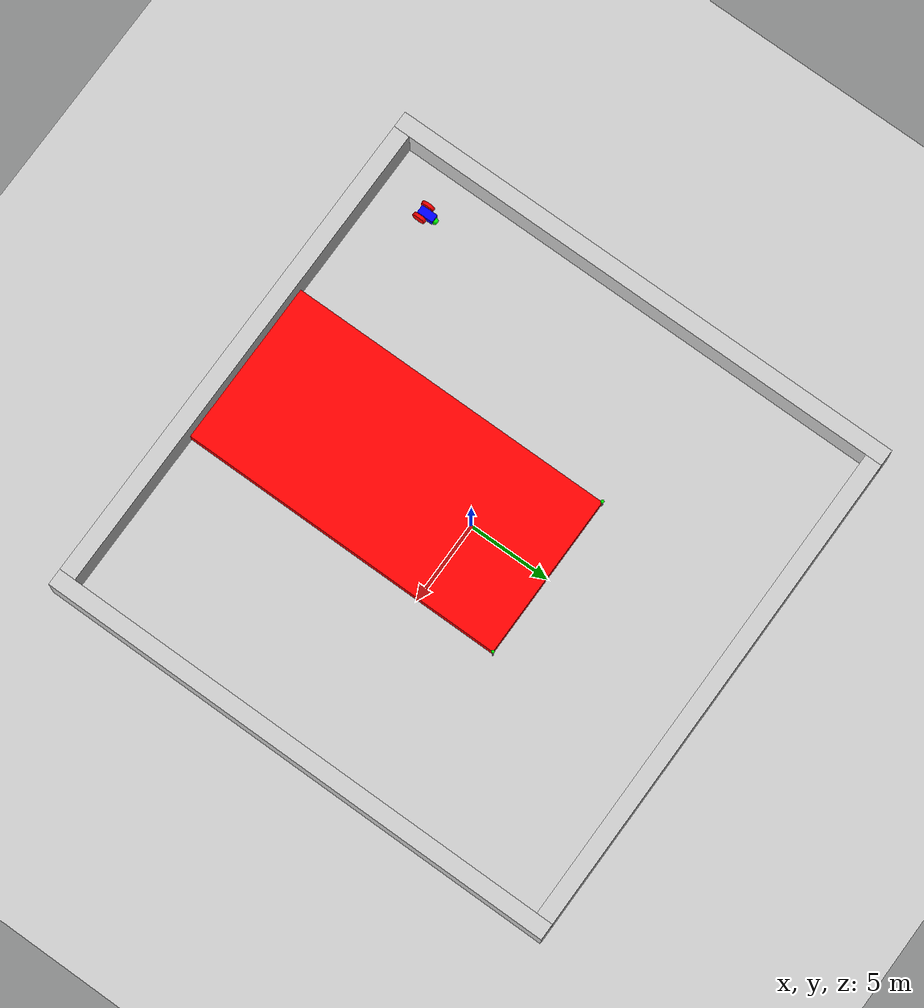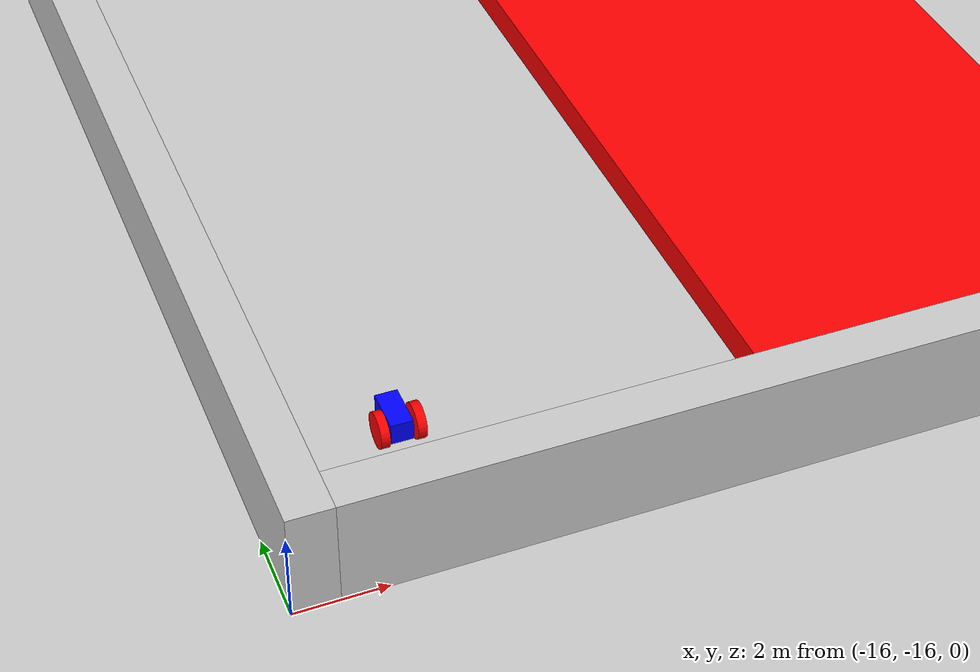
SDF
<?xml version="1.10" ?>
<sdf version="1.6">
  <world name="default">
    <plugin
      filename="gz-sim-physics-system"
      name="gz::sim::systems::Physics">
    </plugin>
    <plugin
      filename="gz-sim-scene-broadcaster-system"
      name="gz::sim::systems::SceneBroadcaster">
    </plugin>
    <plugin
      filename="gz-sim-sensors-system"
      name="gz::sim::systems::Sensors">
      <render_engine>ogre2</render_engine>
    </plugin>
    <plugin
      filename="gz-sim-user-commands-system"
      name="gz::sim::systems::UserCommands">
    </plugin>

    <gui fullscreen="0">
      <!-- 3D scene -->
      <plugin filename="MinimalScene" name="3D View">
        <engine>ogre2</engine>
        <scene>scene</scene>
        <ambient_light>0.4 0.4 0.4</ambient_light>
        <background_color>0.8 0.8 0.8</background_color>
        <camera_pose>-6 0 6 0 0.5 0</camera_pose>
      </plugin>

      <!-- Plugins that add functionality to the scene -->
      <plugin filename="EntityContextMenuPlugin" name="Entity context menu">
        <gz-gui>
          <property key="state" type="string">floating</property>
          <property key="width" type="double">5</property>
          <property key="height" type="double">5</property>
          <property key="showTitleBar" type="bool">false</property>
        </gz-gui>
      </plugin>
      <plugin filename="GzSceneManager" name="Scene Manager">
        <gz-gui>
          <property key="resizable" type="bool">false</property>
          <property key="width" type="double">5</property>
          <property key="height" type="double">5</property>
          <property key="state" type="string">floating</property>
          <property key="showTitleBar" type="bool">false</property>
        </gz-gui>
      </plugin>
      <plugin filename="InteractiveViewControl" name="Interactive view control">
        <gz-gui>
          <property key="resizable" type="bool">false</property>
          <property key="width" type="double">5</property>
          <property key="height" type="double">5</property>
          <property key="state" type="string">floating</property>
          <property key="showTitleBar" type="bool">false</property>
        </gz-gui>
      </plugin>
      <plugin filename="CameraTracking" name="Camera Tracking">
        <gz-gui>
          <property key="resizable" type="bool">false</property>
          <property key="width" type="double">5</property>
          <property key="height" type="double">5</property>
          <property key="state" type="string">floating</property>
          <property key="showTitleBar" type="bool">false</property>
        </gz-gui>
      </plugin>
      <!-- World control -->
      <plugin filename="WorldControl" name="World control">
        <gz-gui>
          <title>World control</title>
          <property type="bool" key="showTitleBar">false</property>
          <property type="bool" key="resizable">false</property>
          <property type="double" key="height">72</property>
          <property type="double" key="z">1</property>

          <property type="string" key="state">floating</property>
          <anchors target="3D View">
            <line own="left" target="left"/>
            <line own="bottom" target="bottom"/>
          </anchors>
        </gz-gui>

        <play_pause>true</play_pause>
        <step>true</step>
        <start_paused>true</start_paused>
        <use_event>true</use_event>

      </plugin>

      <!-- World statistics -->
      <plugin filename="WorldStats" name="World stats">
        <gz-gui>
          <title>World stats</title>
          <property type="bool" key="showTitleBar">false</property>
          <property type="bool" key="resizable">false</property>
          <property type="double" key="height">110</property>
          <property type="double" key="width">290</property>
          <property type="double" key="z">1</property>

          <property type="string" key="state">floating</property>
          <anchors target="3D View">
            <line own="right" target="right"/>
            <line own="bottom" target="bottom"/>
          </anchors>
        </gz-gui>

        <sim_time>true</sim_time>
        <real_time>true</real_time>
        <real_time_factor>true</real_time_factor>
        <iterations>true</iterations>
      </plugin>

      <plugin filename="ImageDisplay" name="Image Display">
        <gz-gui>
          <property key="state" type="string">docked</property>
        </gz-gui>
        <topic>ptzCam1/camera_x1</topic>
      </plugin>

      <plugin filename="ImageDisplay" name="Image Display">
        <gz-gui>
          <property key="state" type="string">docked</property>
        </gz-gui>
        <topic>ptzCam2/camera_x1</topic>
      </plugin>

      <!-- Inspector -->

      <!-- Entity tree -->
    </gui>

    <model name="ground_plane">
      <static>true</static>
      <link name="link">
        <collision name="collision">
          <geometry>
            <plane>
              <normal>0 0 1</normal>
              <size>1000 1000</size>
            </plane>
          </geometry>
        </collision>
        <visual name="visual">
          <geometry>
            <plane>
              <normal>0 0 1</normal>
              <size>30 30</size>
            </plane>
          </geometry>
          <material>
            <ambient>0.8 0.8 0.8 1</ambient>
            <diffuse>0.8 0.8 0.8 1</diffuse>
            <specular>0.8 0.8 0.8 1</specular>
          </material>
        </visual>
      </link>
    </model>

    <model name="building">
      <pose>0 -5 0.5 0 0 0</pose>
      <link name="building">
        <inertial>
          <inertia>
            <ixx>1</ixx>
            <ixy>0</ixy>
            <ixz>0</ixz>
            <iyy>1</iyy>
            <iyz>0</iyz>
            <izz>1</izz>
          </inertia>
          <mass>1.0</mass>
        </inertial>
        <collision name="building_collision">
          <geometry>
            <box>
              <size>5 15 0.75</size>
            </box>
          </geometry>
        </collision>

        <visual name="building_visual">
          <geometry>
            <box>
              <size>10 20 0.75</size>
            </box>
          </geometry>
          <material>
            <ambient>1 0 0 1</ambient>
            <diffuse>1 0 0 1</diffuse>
            <specular>1 0 0 1</specular>
          </material>
        </visual>
      </link>
    </model>

    <model name="wall1">
      <pose>-15.5 0 1 0 0 0</pose>
      <link name="building">
        <inertial>
          <inertia>
            <ixx>1</ixx>
            <ixy>0</ixy>
            <ixz>0</ixz>
            <iyy>1</iyy>
            <iyz>0</iyz>
            <izz>1</izz>
          </inertia>
          <mass>1000.0</mass>
        </inertial>
        <collision name="building_collision">
          <geometry>
            <box>
              <size>1 32 3</size>
            </box>
          </geometry>
        </collision>

        <visual name="building_visual">
          <geometry>
            <box>
              <size>1 32 3</size>
            </box>
          </geometry>
          <material>
            <ambient>0.8 0.8 0.8 1</ambient>
            <diffuse>0.8 0.8 0.8 1</diffuse>
            <specular>0.8 0.8 0.8 1</specular>
          </material>
        </visual>
      </link>
    </model>

    <model name="wall2">
      <pose>15.5 0 1 0 0 0</pose>
      <link name="building">
        <inertial>
          <inertia>
            <ixx>1</ixx>
            <ixy>0</ixy>
            <ixz>0</ixz>
            <iyy>1</iyy>
            <iyz>0</iyz>
            <izz>1</izz>
          </inertia>
          <mass>1000.0</mass>
        </inertial>
        <collision name="building_collision">
          <geometry>
            <box>
              <size>1 32 3</size>
            </box>
          </geometry>
        </collision>

        <visual name="building_visual">
          <geometry>
            <box>
              <size>1 32 3</size>
            </box>
          </geometry>
          <material>
            <ambient>0.8 0.8 0.8 1</ambient>
            <diffuse>0.8 0.8 0.8 1</diffuse>
            <specular>0.8 0.8 0.8 1</specular>
          </material>
        </visual>
      </link>
    </model>

    <model name="wall3">
      <pose>0 15.5 1 0 0 0</pose>
      <link name="building">
        <inertial>
          <inertia>
            <ixx>1</ixx>
            <ixy>0</ixy>
            <ixz>0</ixz>
            <iyy>1</iyy>
            <iyz>0</iyz>
            <izz>1</izz>
          </inertia>
          <mass>1000.0</mass>
        </inertial>
        <collision name="building_collision">
          <geometry>
            <box>
              <size>30 1 3</size>
            </box>
          </geometry>
        </collision>

        <visual name="building_visual">
          <geometry>
            <box>
              <size>30 1 3</size>
            </box>
          </geometry>
          <material>
            <ambient>0.8 0.8 0.8 1</ambient>
            <diffuse>0.8 0.8 0.8 1</diffuse>
            <specular>0.8 0.8 0.8 1</specular>
          </material>
        </visual>
      </link>
    </model>

    <model name="wall4">
      <pose>0 -15.5 1 0 0 0</pose>
      <link name="building">
        <inertial>
          <inertia>
            <ixx>1</ixx>
            <ixy>0</ixy>
            <ixz>0</ixz>
            <iyy>1</iyy>
            <iyz>0</iyz>
            <izz>1</izz>
          </inertia>
          <mass>1000.0</mass>
        </inertial>
        <collision name="building_collision">
          <geometry>
            <box>
              <size>30 1 3</size>
            </box>
          </geometry>
        </collision>

        <visual name="building_visual">
          <geometry>
            <box>
              <size>30 1 3</size>
            </box>
          </geometry>
          <material>
            <ambient>0.8 0.8 0.8 1</ambient>
            <diffuse>0.8 0.8 0.8 1</diffuse>
            <specular>0.8 0.8 0.8 1</specular>
          </material>
        </visual>
      </link>
    </model>

    <light type="directional" name="sun">
      <cast_shadows>true</cast_shadows>
      <pose>0 0 10 0 0 0</pose>
      <diffuse>1 1 1 1</diffuse>
      <specular>0.5 0.5 0.5 1</specular>
      <attenuation>
        <range>1000</range>
        <constant>0.9</constant>
        <linear>0.01</linear>
        <quadratic>0.001</quadratic>
      </attenuation>
      <direction>-0.5 0.1 -0.9</direction>
    </light>

    <model name="ptzCam1">
      <pose>-5 5 0 0 1.57 0</pose>
      <link name="base_link">
        <pose>0.0 0.0 0.0 0 0 0</pose>
        <inertial>
          <inertia>
            <ixx>2.501</ixx>
            <ixy>0</ixy>
            <ixz>0</ixz>
            <iyy>2.501</iyy>
            <iyz>0</iyz>
            <izz>5</izz>
          </inertia>
          <mass>120.0</mass>
        </inertial>
        <visual name="base_visual">
          <pose>-.5 0.0 0.0 0 -1.57 0</pose>
          <geometry>
            <cylinder>
              <radius>0.05</radius>
              <length>1</length>
            </cylinder>
          </geometry>
        </visual>
        <collision name="base_collision">
          <pose>0.0 0.0 0.0 0 0 0</pose>
          <geometry>
            <cylinder>
              <radius>0.05</radius>
              <length>0.1</length>
            </cylinder>
          </geometry>
        </collision>
      </link>
      <link name="camera">
        <pose>-1.01 0.0 0.0 0 -1.57 0</pose>
        <inertial>
          <inertia>
            <ixx>0.032</ixx>
            <ixy>0</ixy>
            <ixz>0</ixz>
            <iyy>0.032</iyy>
            <iyz>0</iyz>
            <izz>0.00012</izz>
          </inertia>
          <mass>0.6</mass>
        </inertial>
        <visual name="visual">
          <geometry>
            <sphere>
              <radius>0.1</radius>
            </sphere>
          </geometry>
          <material>
            <ambient>0 1 0 1</ambient>
            <diffuse>0 1 0 1</diffuse>
            <specular>0 1 0 1</specular>
          </material>
        </visual>
        <collision name="collision">
          <geometry>
            <box>
              <size>0.25 0.1 0.05</size>
            </box>
          </geometry>
        </collision>
        <sensor name="camera_zoomx1" type="camera">
          <camera>
            <horizontal_fov>0.523599</horizontal_fov>
            <image>
              <width>640</width>
              <height>480</height>
            </image>
            <clip>
              <near>0.1</near>
              <far>100</far>
            </clip>
          </camera>
          <always_on>1</always_on>
          <update_rate>30</update_rate>
          <visualize>true</visualize>
          <topic>ptzCam1/camera_x1</topic>
        </sensor>
      </link>
      <link name="intermediate">
        <pose>-1.01 0.0 0.0 0 -1.57 0</pose>
        <inertial>
          <inertia>
            <ixx>0.032</ixx>
            <ixy>0</ixy>
            <ixz>0</ixz>
            <iyy>0.032</iyy>
            <iyz>0</iyz>
            <izz>0.00012</izz>
          </inertia>
          <mass>0.6</mass>
        </inertial>
      </link>
      <joint name="world_fixed" type="fixed">
        <parent>world</parent>
        <child>base_link</child>
      </joint>

      <joint name="pan" type="revolute">
        <parent>base_link</parent>
        <child>intermediate</child>
        <axis>
          <xyz>0 0 1</xyz>
          <dynamics>
            <damping>1</damping>
          </dynamics>
        </axis>
      </joint>
      <plugin
        filename="gz-sim-joint-position-controller-system"
        name="gz::sim::systems::JointPositionController">
        <joint_name>pan</joint_name>
        <topic>/cam1/pan_cmd</topic>
        <p_gain>1</p_gain>
        <i_gain>0.1</i_gain>
        <d_gain>0.01</d_gain>
        <i_max>1</i_max>
        <i_min>-1</i_min>
        <cmd_max>1000</cmd_max>
        <cmd_min>-1000</cmd_min>
      </plugin>

      <joint name="tilt" type="revolute">
        <parent>intermediate</parent>
        <child>camera</child>
        <axis>
          <xyz>0 0 1</xyz>
          <dynamics>
            <damping>1</damping>
          </dynamics>
        </axis>
      </joint>

      <plugin
          filename="gz-sim-joint-controller-system"
          name="gz::sim::systems::JointController">
        <joint_name>pan</joint_name>
        <use_actuator_msg>true</use_actuator_msg>
        <actuator_number>0</actuator_number>
        <actuator_number>1</actuator_number>
      </plugin>

      <plugin
        filename="gz-sim-joint-state-publisher-system"
        name="gz::sim::systems::JointStatePublisher">
        <joint_name>pan</joint_name>
      </plugin>
      <plugin
        filename="gz-sim-joint-state-publisher-system"
        name="gz::sim::systems::JointStatePublisher">
        <joint_name>pan</joint_name>
        <topic>cam1/pan</topic>
      </plugin>
    </model>

    <model name="ptzCam2">
      <pose>5 5 0 0 1.57 1.2</pose>
      <link name="base_link">
        <pose>0.0 0.0 0.0 0 0 0</pose>
        <inertial>
          <inertia>
            <ixx>2.501</ixx>
            <ixy>0</ixy>
            <ixz>0</ixz>
            <iyy>2.501</iyy>
            <iyz>0</iyz>
            <izz>5</izz>
          </inertia>
          <mass>120.0</mass>
        </inertial>
        <visual name="base_visual">
          <pose>-.5 0.0 0.0 0 -1.57 0</pose>
          <geometry>
            <cylinder>
              <radius>0.05</radius>
              <length>1</length>
            </cylinder>
          </geometry>
        </visual>
        <collision name="base_collision">
          <pose>0.0 0.0 0.0 0 0 0</pose>
          <geometry>
            <cylinder>
              <radius>0.05</radius>
              <length>0.1</length>
            </cylinder>
          </geometry>
        </collision>
      </link>
      <link name="camera">
        <pose>-1.01 0.0 0.0 0 -1.57 0</pose>
        <inertial>
          <inertia>
            <ixx>0.032</ixx>
            <ixy>0</ixy>
            <ixz>0</ixz>
            <iyy>0.032</iyy>
            <iyz>0</iyz>
            <izz>0.00012</izz>
          </inertia>
          <mass>0.6</mass>
        </inertial>
        <visual name="visual">
          <geometry>
            <sphere>
              <radius>0.1</radius>
            </sphere>
          </geometry>
          <material>
            <ambient>0 1 0 1</ambient>
            <diffuse>0 1 0 1</diffuse>
            <specular>0 1 0 1</specular>
          </material>
        </visual>
        <collision name="collision">
          <geometry>
            <box>
              <size>0.25 0.1 0.05</size>
            </box>
          </geometry>
        </collision>
        <sensor name="camera_zoomx1" type="camera">
          <camera>
            <horizontal_fov>0.523599</horizontal_fov>
            <image>
              <width>640</width>
              <height>480</height>
            </image>
            <clip>
              <near>0.1</near>
              <far>100</far>
            </clip>
          </camera>
          <always_on>1</always_on>
          <update_rate>30</update_rate>
          <visualize>true</visualize>
          <topic>ptzCam2/camera_x1</topic>
        </sensor>
      </link>
      <link name="intermediate">
        <pose>-1.01 0.0 0.0 0 -1.57 0</pose>
        <inertial>
          <inertia>
            <ixx>0.032</ixx>
            <ixy>0</ixy>
            <ixz>0</ixz>
            <iyy>0.032</iyy>
            <iyz>0</iyz>
            <izz>0.00012</izz>
          </inertia>
          <mass>0.6</mass>
        </inertial>
      </link>
      <joint name="world_fixed" type="fixed">
        <parent>world</parent>
        <child>base_link</child>
      </joint>

      <joint name="pan" type="revolute">
        <parent>base_link</parent>
        <child>intermediate</child>
        <axis>
          <xyz>0 0 1</xyz>
          <dynamics>
            <damping>1</damping>
          </dynamics>
        </axis>
      </joint>
      <plugin
        filename="gz-sim-joint-position-controller-system"
        name="gz::sim::systems::JointPositionController">
        <joint_name>pan</joint_name>
        <topic>/cam2/pan_cmd</topic>
        <p_gain>1</p_gain>
        <i_gain>0.1</i_gain>
        <d_gain>0.01</d_gain>
        <i_max>1</i_max>
        <i_min>-1</i_min>
        <cmd_max>1000</cmd_max>
        <cmd_min>-1000</cmd_min>
      </plugin>

      <joint name="tilt" type="revolute">
        <parent>intermediate</parent>
        <child>camera</child>
        <axis>
          <xyz>0 0 1</xyz>
          <dynamics>
            <damping>1</damping>
          </dynamics>
        </axis>
      </joint>

      <plugin
          filename="gz-sim-joint-controller-system"
          name="gz::sim::systems::JointController">
        <joint_name>pan</joint_name>
        <use_actuator_msg>true</use_actuator_msg>
        <actuator_number>0</actuator_number>
        <actuator_number>1</actuator_number>
      </plugin>

      <plugin
        filename="gz-sim-joint-state-publisher-system"
        name="gz::sim::systems::JointStatePublisher">
        <joint_name>pan</joint_name>
      </plugin>
      <plugin
        filename="gz-sim-joint-state-publisher-system"
        name="gz::sim::systems::JointStatePublisher">
        <joint_name>pan</joint_name>
        <topic>cam2/pan</topic>
      </plugin>
    </model>

    <!-- implemented from the open-source gazebo tutorial -->
    <model name='target' canonical_link='chassis'>
      <pose relative_to='world'>-12.5 -12.5 0 0 0 1.57</pose>   <!--the pose is relative to the world by default-->

      <link name='chassis'>
          <pose relative_to='__model__'>0.5 0 0.4 0 0 0</pose>
          <inertial> <!--inertial properties of the link mass, inertia matix-->
              <mass>1.14395</mass>
              <inertia>
                  <ixx>0.126164</ixx>
                  <ixy>0</ixy>
                  <ixz>0</ixz>
                  <iyy>0.416519</iyy>
                  <iyz>0</iyz>
                  <izz>0.481014</izz>
              </inertia>
          </inertial>
          <visual name='visual'>
              <geometry>
                  <box>
                      <size>1.0 0.5 0.5</size> <!--question: this size is in meter-->
                  </box>
              </geometry>
              <!--let's add color to our link-->
              <material>
                  <ambient>0.0 0.0 1.0 1</ambient>
                  <diffuse>0.0 0.0 1.0 1</diffuse>
                  <specular>0.0 0.0 1.0 1</specular>
              </material>
          </visual>
          <collision name='collision'> <!--todo: describe why we need the collision-->
              <geometry>
                  <box>
                      <size>1.0 0.5 0.5</size>
                  </box>
              </geometry>
          </collision>
      </link>

      <!--let's build the left wheel-->
      <link name='left_wheel'>
          <pose relative_to="chassis">-0.25 0.4 0 -1.5707 0 0</pose> <!--angles are in radian-->
          <inertial>
              <mass>2</mass>
              <inertia>
                  <ixx>0.145833</ixx>
                  <ixy>0</ixy>
                  <ixz>0</ixz>
                  <iyy>0.145833</iyy>
                  <iyz>0</iyz>
                  <izz>0.125</izz>
              </inertia>
          </inertial>
          <visual name='visual'>
              <geometry>
                  <cylinder>
                      <radius>0.4</radius>
                      <length>0.2</length>
                  </cylinder>
              </geometry>
              <material>
                  <ambient>1.0 0.0 0.0 1</ambient>
                  <diffuse>1.0 0.0 0.0 1</diffuse>
                  <specular>1.0 0.0 0.0 1</specular>
              </material>
          </visual>
          <collision name='collision'>
              <geometry>
                  <cylinder>
                      <radius>0.4</radius>
                      <length>0.2</length>
                  </cylinder>
              </geometry>
          </collision>
      </link>

      <!--copy and paste for right wheel but change position-->
      <link name='right_wheel'>
          <pose relative_to="chassis">-0.25 -0.4 0 -1.5707 0 0</pose> <!--angles are in radian-->
          <inertial>
              <mass>1</mass>
              <inertia>
                  <ixx>0.145833</ixx>
                  <ixy>0</ixy>
                  <ixz>0</ixz>
                  <iyy>0.145833</iyy>
                  <iyz>0</iyz>
                  <izz>0.125</izz>
              </inertia>
          </inertial>
          <visual name='visual'>
              <geometry>
                  <cylinder>
                      <radius>0.4</radius>
                      <length>0.2</length>
                  </cylinder>
              </geometry>
              <material>
                  <ambient>1.0 0.0 0.0 1</ambient>
                  <diffuse>1.0 0.0 0.0 1</diffuse>
                  <specular>1.0 0.0 0.0 1</specular>
              </material>
          </visual>
          <collision name='collision'>
              <geometry>
                  <cylinder>
                      <radius>0.4</radius>
                      <length>0.2</length>
                  </cylinder>
              </geometry>
          </collision>
      </link>

      <frame name="caster_frame" attached_to='chassis'>
          <pose>0.5 0 -0.2 0 0 0</pose>
      </frame>

      <!--caster wheel-->
      <link name='caster'>
          <pose relative_to='caster_frame'/>
          <inertial>
              <mass>1</mass>
              <inertia>
                  <ixx>0.1</ixx>
                  <ixy>0</ixy>
                  <ixz>0</ixz>
                  <iyy>0.1</iyy>
                  <iyz>0</iyz>
                  <izz>0.1</izz>
              </inertia>
          </inertial>
          <visual name='visual'>
              <geometry>
                  <sphere>
                      <radius>0.2</radius>
                  </sphere>
              </geometry>
              <material>
                  <ambient>0.0 1 0.0 1</ambient>
                  <diffuse>0.0 1 0.0 1</diffuse>
                  <specular>0.0 1 0.0 1</specular>
              </material>
          </visual>
          <collision name='collision'>
              <geometry>
                  <sphere>
                      <radius>0.2</radius>
                  </sphere>
              </geometry>
          </collision>
      </link>

      <!--connecting these links together using joints-->
      <joint name='left_wheel_joint' type='revolute'> <!--continous joint is not supported yet-->
          <pose relative_to='left_wheel'/>
          <parent>chassis</parent>
          <child>left_wheel</child>
          <axis>
              <xyz expressed_in='__model__'>0 1 0</xyz> <!--can be defined as any frame or even arbitrary frames-->
              <limit>
                  <lower>-1.79769e+308</lower>    <!--negative infinity-->
                  <upper>1.79769e+308</upper>     <!--positive infinity-->
              </limit>
          </axis>
      </joint>

      <joint name='right_wheel_joint' type='revolute'>
          <pose relative_to='right_wheel'/>
          <parent>chassis</parent>
          <child>right_wheel</child>
          <axis>
              <xyz expressed_in='__model__'>0 1 0</xyz>
              <limit>
                  <lower>-1.79769e+308</lower>    <!--negative infinity-->
                  <upper>1.79769e+308</upper>     <!--positive infinity-->
              </limit>
          </axis>
      </joint>

      <!--different type of joints ball joint--> <!--defult value is the child-->
      <joint name='caster_wheel' type='ball'>
          <parent>chassis</parent>
          <child>caster</child>
      </joint>

      <!--diff drive plugin-->
      <plugin
          filename="gz-sim-diff-drive-system"
          name="gz::sim::systems::DiffDrive">
          <left_joint>left_wheel_joint</left_joint>
          <right_joint>right_wheel_joint</right_joint>
          <wheel_separation>1.2</wheel_separation>
          <wheel_radius>0.4</wheel_radius>
          <odom_publish_frequency>1</odom_publish_frequency>
          <topic>cmd_vel</topic>
      </plugin>
      <plugin
        filename="gz-sim-pose-publisher-system"
        name="gz::sim::systems::PosePublisher">
        <publish_link_pose>false</publish_link_pose>
        <publish_collision_pose>false</publish_collision_pose>
        <publish_visual_pose>false</publish_visual_pose>
        <publish_nested_model_pose>true</publish_nested_model_pose>
      </plugin>
  </model>

  <!-- Moving Left-->
  <plugin filename="gz-sim-triggered-publisher-system"
          name="gz::sim::systems::TriggeredPublisher">
      <input type="gz.msgs.Int32" topic="/keyboard/keypress">
          <match field="data">16777234</match>
      </input>
      <output type="gz.msgs.Twist" topic="/cmd_vel">
          linear: {x: 0.0}, angular: {z: 0.5}
      </output>
  </plugin>
  <!-- Moving Forward-->
  <plugin filename="gz-sim-triggered-publisher-system"
          name="gz::sim::systems::TriggeredPublisher">
      <input type="gz.msgs.Int32" topic="/keyboard/keypress">
          <match field="data">16777235</match>
      </input>
      <output type="gz.msgs.Twist" topic="/cmd_vel">
          linear: {x: 0.5}, angular: {z: 0.0}
      </output>
  </plugin>
  <!-- Moving Right-->
  <plugin filename="gz-sim-triggered-publisher-system"
          name="gz::sim::systems::TriggeredPublisher">
      <input type="gz.msgs.Int32" topic="/keyboard/keypress">
          <match field="data">16777236</match>
      </input>
      <output type="gz.msgs.Twist" topic="/cmd_vel">
          linear: {x: 0.0}, angular: {z: -0.5}
      </output>
  </plugin>
  <!-- Moving Backward-->
  <plugin filename="gz-sim-triggered-publisher-system"
          name="gz::sim::systems::TriggeredPublisher">
      <input type="gz.msgs.Int32" topic="/keyboard/keypress">
          <match field="data">16777237</match>
      </input>
      <output type="gz.msgs.Twist" topic="/cmd_vel">
          linear: {x: -0.5}, angular: {z: 0.0}
      </output>
  </plugin>

  </world>
</sdf>
